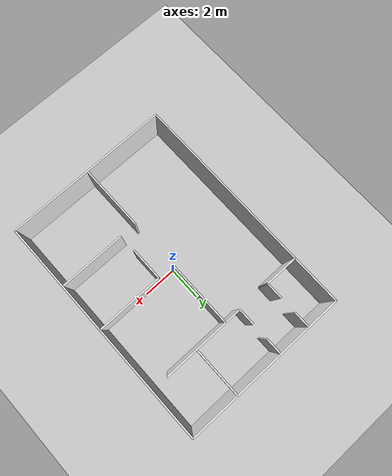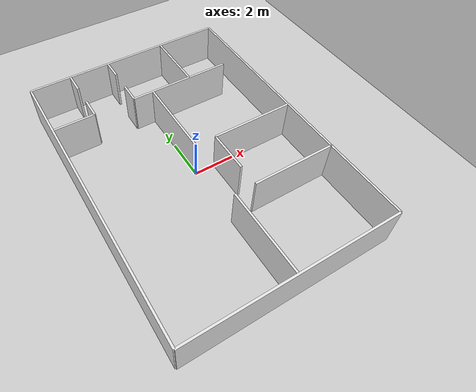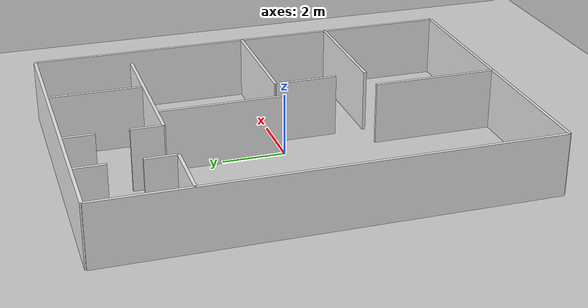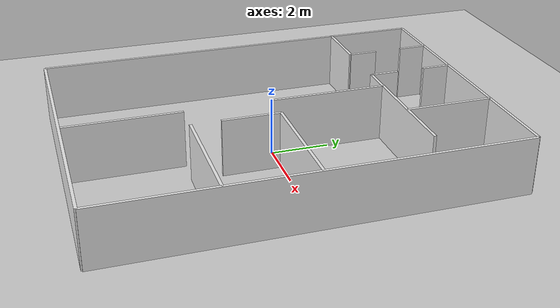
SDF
<?xml version="1.0" ?>
<sdf version="1.6">
  <world name="xbot">
    <physics name="1ms" type="ignored">
      <max_step_size>0.001</max_step_size>
      <real_time_factor>1.0</real_time_factor>
    </physics>
    <plugin
        filename="gz-sim-physics-system"
        name="gz::sim::systems::Physics">
    </plugin>
    <plugin
        filename="gz-sim-user-commands-system"
        name="gz::sim::systems::UserCommands">
    </plugin>
    <plugin
        filename="gz-sim-scene-broadcaster-system"
        name="gz::sim::systems::SceneBroadcaster">
    </plugin>
    <plugin
        filename="gz-sim-contact-system"
        name="gz::sim::systems::Contact">
    </plugin>

    <light type="directional" name="sun">
      <cast_shadows>true</cast_shadows>
      <pose>0 0 10 0 0 0</pose>
      <diffuse>0.8 0.8 0.8 1</diffuse>
      <specular>0.2 0.2 0.2 1</specular>
      <attenuation>
        <range>1000</range>
        <constant>0.9</constant>
        <linear>0.01</linear>
        <quadratic>0.001</quadratic>
      </attenuation>
      <direction>-0.5 0.1 -0.9</direction>
    </light>

    <model name="ground_plane">
      <static>true</static>
      <link name="link">
        <collision name="collision">
          <geometry>
            <plane>
              <normal>0 0 1</normal>
              <size>10 14</size>
            </plane>
          </geometry>
        </collision>
        <visual name="visual">
          <geometry>
            <plane>
              <normal>0 0 1</normal>
              <size>10 14</size>
            </plane>
          </geometry>
          <material>
            <ambient>0.8 0.8 0.8 1</ambient>
            <diffuse>0.8 0.8 0.8 1</diffuse>
            <specular>0.8 0.8 0.8 1</specular>
          </material>
        </visual>
      </link>
    </model>

    <model name="three_bedroom_house_redesigned">
      <static>true</static>
      <!-- === 外部轮廓墙体 === -->
      <link name="north_wall">
        <pose>5 0 1 0 0 0</pose>
        <collision name="collision">
          <geometry>
            <box>
              <size>0.1 14 2</size>
            </box>
          </geometry>
        </collision>
        <visual name="visual">
          <geometry>
            <box>
              <size>0.1 14 2</size>
            </box>
          </geometry>
          <material>
            <ambient>0.85 0.85 0.85 1</ambient>
            <diffuse>0.9 0.9 0.9 1</diffuse>
            <specular>0.3 0.3 0.3 1</specular>
          </material>
        </visual>
      </link>

      <link name="south_wall">
        <pose>-5 0 1 0 0 0</pose>
        <collision name="collision">
          <geometry>
            <box>
              <size>0.1 14 2</size>
            </box>
          </geometry>
        </collision>
        <visual name="visual">
          <geometry>
            <box>
              <size>0.1 14 2</size>
            </box>
          </geometry>
          <material>
            <ambient>0.85 0.85 0.85 1</ambient>
            <diffuse>0.9 0.9 0.9 1</diffuse>
            <specular>0.3 0.3 0.3 1</specular>
          </material>
        </visual>
      </link>

      <link name="east_wall">
        <pose>0 -7 1 0 0 0</pose>
        <collision name="collision">
          <geometry>
            <box>
              <size>10 0.1 2</size>
            </box>
          </geometry>
        </collision>
        <visual name="visual">
          <geometry>
            <box>
              <size>10 0.1 2</size>
            </box>
          </geometry>
          <material>
            <ambient>0.85 0.85 0.85 1</ambient>
            <diffuse>0.9 0.9 0.9 1</diffuse>
            <specular>0.3 0.3 0.3 1</specular>
          </material>
        </visual>
      </link>

      <link name="west_wall">
        <pose>0 7 1 0 0 0</pose>
        <collision name="collision">
          <geometry>
            <box>
              <size>10 0.1 2</size>
            </box>
          </geometry>
        </collision>
        <visual name="visual">
          <geometry>
            <box>
              <size>10 0.1 2</size>
            </box>
          </geometry>
          <material>
            <ambient>0.85 0.85 0.85 1</ambient>
            <diffuse>0.9 0.9 0.9 1</diffuse>
            <specular>0.3 0.3 0.3 1</specular>
          </material>
        </visual>
      </link>

      <link name="washroom_wall_1">
        <pose>-4 4 1 0 0 0</pose>
        <collision name="collision">
          <geometry>
            <box>
              <size>2 0.1 2</size>
            </box>
          </geometry>
        </collision>
        <visual name="visual">
          <geometry>
            <box>
              <size>2 0.1 2</size>
            </box>
          </geometry>
          <material>
            <ambient>0.85 0.85 0.85 1</ambient>
            <diffuse>0.9 0.9 0.9 1</diffuse>
            <specular>0.3 0.3 0.3 1</specular>
          </material>
        </visual>
      </link>

      <link name="washroom_wall_2">
        <pose>-3 6.5 1 0 0 0</pose>
        <collision name="collision">
          <geometry>
            <box>
              <size>0.1 1 2</size>
            </box>
          </geometry>
        </collision>
        <visual name="visual">
          <geometry>
            <box>
              <size>0.1 1 2</size>
            </box>
          </geometry>
          <material>
            <ambient>0.85 0.85 0.85 1</ambient>
            <diffuse>0.9 0.9 0.9 1</diffuse>
            <specular>0.3 0.3 0.3 1</specular>
          </material>
        </visual>
      </link>

      <link name="washroom_wall_3">
        <pose>-3 4.5 1 0 0 0</pose>
        <collision name="collision">
          <geometry>
            <box>
              <size>0.1 1 2</size>
            </box>
          </geometry>
        </collision>
        <visual name="visual">
          <geometry>
            <box>
              <size>0.1 1 2</size>
            </box>
          </geometry>
          <material>
            <ambient>0.85 0.85 0.85 1</ambient>
            <diffuse>0.9 0.9 0.9 1</diffuse>
            <specular>0.3 0.3 0.3 1</specular>
          </material>
        </visual>
      </link>

      <link name="kitchenroom_wall_1">
        <pose>-1 6.5 1 0 0 0</pose>
        <collision name="collision">
          <geometry>
            <box>
              <size>0.1 1 2</size>
            </box>
          </geometry>
        </collision>
        <visual name="visual">
          <geometry>
            <box>
              <size>0.1 1 2</size>
            </box>
          </geometry>
          <material>
            <ambient>0.85 0.85 0.85 1</ambient>
            <diffuse>0.9 0.9 0.9 1</diffuse>
            <specular>0.3 0.3 0.3 1</specular>
          </material>
        </visual>
      </link>

      <link name="kitchenroom_wall_2">
        <pose>-1 4.5 1 0 0 0</pose>
        <collision name="collision">
          <geometry>
            <box>
              <size>0.1 1 2</size>
            </box>
          </geometry>
        </collision>
        <visual name="visual">
          <geometry>
            <box>
              <size>0.1 1 2</size>
            </box>
          </geometry>
          <material>
            <ambient>0.85 0.85 0.85 1</ambient>
            <diffuse>0.9 0.9 0.9 1</diffuse>
            <specular>0.3 0.3 0.3 1</specular>
          </material>
        </visual>
      </link>

      <link name="kitchenroom_wall_3">
        <pose>1.5 4 1 0 0 0</pose>
        <collision name="collision">
          <geometry>
            <box>
              <size>5 0.1 2</size>
            </box>
          </geometry>
        </collision>
        <visual name="visual">
          <geometry>
            <box>
              <size>5 0.1 2</size>
            </box>
          </geometry>
          <material>
            <ambient>0.85 0.85 0.85 1</ambient>
            <diffuse>0.9 0.9 0.9 1</diffuse>
            <specular>0.3 0.3 0.3 1</specular>
          </material>
        </visual>
      </link>

      <link name="kitchenroom_wall_4">
        <pose>2 5.5 1 0 0 0</pose>
        <collision name="collision">
          <geometry>
            <box>
              <size>0.1 3 2</size>
            </box>
          </geometry>
        </collision>
        <visual name="visual">
          <geometry>
            <box>
              <size>0.1 3 2</size>
            </box>
          </geometry>
          <material>
            <ambient>0.85 0.85 0.85 1</ambient>
            <diffuse>0.9 0.9 0.9 1</diffuse>
            <specular>0.3 0.3 0.3 1</specular>
          </material>
        </visual>
      </link>

      <link name="bedroom_wall_1">
        <pose>0 2 1 0 0 0</pose>
        <collision name="collision">
          <geometry>
            <box>
              <size>0.1 4 2</size>
            </box>
          </geometry>
        </collision>
        <visual name="visual">
          <geometry>
            <box>
              <size>0.1 4 2</size>
            </box>
          </geometry>
          <material>
            <ambient>0.85 0.85 0.85 1</ambient>
            <diffuse>0.9 0.9 0.9 1</diffuse>
            <specular>0.3 0.3 0.3 1</specular>
          </material>
        </visual>
      </link>

      <link name="bedroom_wall_2">
        <pose>3 0 1 0 0 0</pose>
        <collision name="collision">
          <geometry>
            <box>
              <size>4 0.1 2</size>
            </box>
          </geometry>
        </collision>
        <visual name="visual">
          <geometry>
            <box>
              <size>4 0.1 2</size>
            </box>
          </geometry>
          <material>
            <ambient>0.85 0.85 0.85 1</ambient>
            <diffuse>0.9 0.9 0.9 1</diffuse>
            <specular>0.3 0.3 0.3 1</specular>
          </material>
        </visual>
      </link>

      <link name="bedroom_wall_3">
        <pose>0 -5 1 0 0 0</pose>
        <collision name="collision">
          <geometry>
            <box>
              <size>0.1 4 2</size>
            </box>
          </geometry>
        </collision>
        <visual name="visual">
          <geometry>
            <box>
              <size>0.1 4 2</size>
            </box>
          </geometry>
          <material>
            <ambient>0.85 0.85 0.85 1</ambient>
            <diffuse>0.9 0.9 0.9 1</diffuse>
            <specular>0.3 0.3 0.3 1</specular>
          </material>
        </visual>
      </link>

      <link name="bedroom_wall_4">
        <pose>3 -3 1 0 0 0</pose>
        <collision name="collision">
          <geometry>
            <box>
              <size>4 0.1 2</size>
            </box>
          </geometry>
        </collision>
        <visual name="visual">
          <geometry>
            <box>
              <size>4 0.1 2</size>
            </box>
          </geometry>
          <material>
            <ambient>0.85 0.85 0.85 1</ambient>
            <diffuse>0.9 0.9 0.9 1</diffuse>
            <specular>0.3 0.3 0.3 1</specular>
          </material>
        </visual>
      </link>

      <link name="bedroom_wall_5">
        <pose>1 -1 1 0 0 0</pose>
        <collision name="collision">
          <geometry>
            <box>
              <size>0.1 2 2</size>
            </box>
          </geometry>
        </collision>
        <visual name="visual">
          <geometry>
            <box>
              <size>0.1 2 2</size>
            </box>
          </geometry>
          <material>
            <ambient>0.85 0.85 0.85 1</ambient>
            <diffuse>0.9 0.9 0.9 1</diffuse>
            <specular>0.3 0.3 0.3 1</specular>
          </material>
        </visual>
      </link>

    </model>

  </world>
</sdf>
